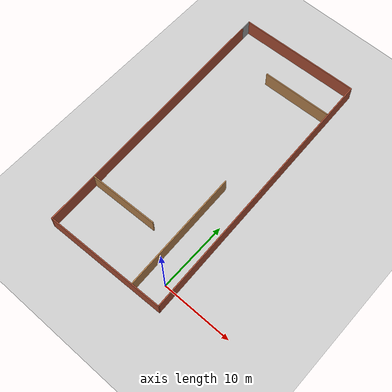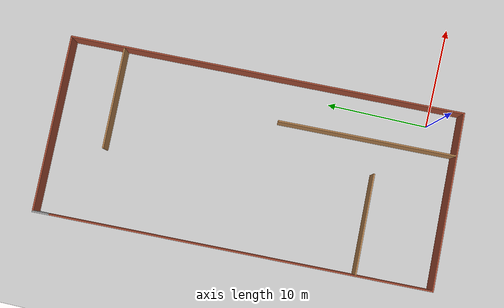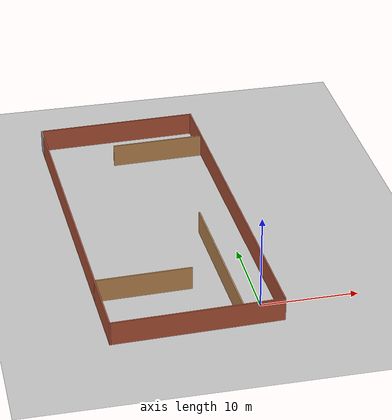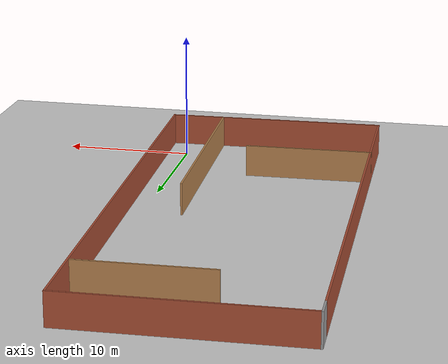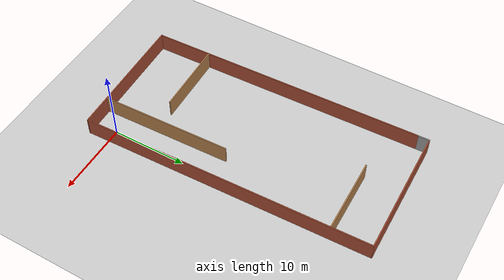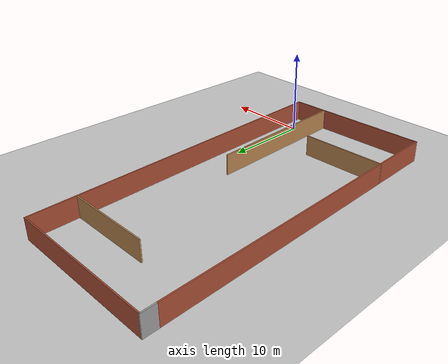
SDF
<sdf version="1.6">
 <world name="default">
  <light name="sun" type="directional">
   <pose>0 0 10 0 -0 0</pose>
   <diffuse>0.8 0.8 0.8 1</diffuse>
   <specular>0.2 0.2 0.2 1</specular>
   <attenuation>
    <range>1000</range>
    <constant>0.9</constant>
    <linear>0.01</linear>
    <quadratic>0.001</quadratic>
   </attenuation>
   <direction>-0.5 0.1 -0.9</direction>
  </light>
  <model name="ground_plane">
   <static>1</static>
   <link name="link">
    <collision name="collision">
     <geometry><plane><normal>0 0 1</normal><size>100 100</size></plane></geometry>
     <surface>
      <contact><collide_bitmask>65535</collide_bitmask></contact>
      <friction><ode><mu>100</mu><mu2>50</mu2></ode></friction>
     </surface>
    </collision>
    <visual name="visual">
     <cast_shadows>0</cast_shadows>
     <geometry><plane><normal>0 0 1</normal><size>100 100</size></plane></geometry>
     <material>
      <script><uri>file://media/materials/scripts/gazebo.material</uri><name>Gazebo/Grey</name></script>
     </material>
    </visual>
   </link>
  </model>
  <gravity>0 0 -9.8</gravity>
  <magnetic_field>6e-06 2.3e-05 -4.2e-05</magnetic_field>
  <atmosphere type="adiabatic"/>
  <physics name="default_physics" default="0" type="ode">
   <max_step_size>0.001</max_step_size>
   <real_time_factor>1</real_time_factor>
   <real_time_update_rate>1000</real_time_update_rate>
  </physics>
  <scene><ambient>0.4 0.4 0.4 1</ambient><background>0.7 0.7 0.7 1</background><shadows>1</shadows></scene>
  <audio><device>default</device></audio>
  <spherical_coordinates>
   <surface_model>EARTH_WGS84</surface_model>
   <latitude_deg>0</latitude_deg>
   <longitude_deg>0</longitude_deg>
   <elevation>0</elevation>
   <heading_deg>0</heading_deg>
  </spherical_coordinates>
  <model name="random2">
   <pose>-7.5251 16.3211 0 0 -0 1.6</pose>
   <link name="Wall_1">
    <collision name="Wall_1_Collision">
     <geometry><box><size>37.5 0.15 2.5</size></box></geometry>
     <pose>0 0 1.25 0 -0 0</pose>
    </collision>
    <visual name="Wall_1_Visual">
     <pose>0 0 1.25 0 -0 0</pose>
     <geometry><box><size>37.5 0.15 2.5</size></box></geometry>
     <material>
      <script><uri>file://media/materials/scripts/gazebo.material</uri><name>Gazebo/Bricks</name></script>
      <ambient>1 1 1 1</ambient>
     </material>
     <meta><layer>0</layer></meta>
    </visual>
    <pose>-0.75 8.66998 0 0 -0 3.14159</pose>
   </link>
   <link name="Wall_11">
    <collision name="Wall_11_Collision">
     <geometry><box><size>17.5 0.15 2.5</size></box></geometry>
     <pose>0 0 1.25 0 -0 0</pose>
    </collision>
    <visual name="Wall_11_Visual">
     <pose>0 0 1.25 0 -0 0</pose>
     <geometry><box><size>17.5 0.15 2.5</size></box></geometry>
     <material>
      <script><uri>file://media/materials/scripts/gazebo.material</uri><name>Gazebo/Wood</name></script>
      <ambient>1 1 1 1</ambient>
     </material>
     <meta><layer>0</layer></meta>
    </visual>
    <pose>-10.6528 -4.46804 0 0 -0 0</pose>
   </link>
   <link name="Wall_2">
    <collision name="Wall_2_Collision">
     <geometry><box><size>17.5 0.15 2.5</size></box></geometry>
     <pose>0 0 1.25 0 -0 0</pose>
    </collision>
    <visual name="Wall_2_Visual">
     <pose>0 0 1.25 0 -0 0</pose>
     <geometry><box><size>17.5 0.15 2.5</size></box></geometry>
     <material>
      <script><uri>file://media/materials/scripts/gazebo.material</uri><name>Gazebo/Bricks</name></script>
      <ambient>1 1 1 1</ambient>
     </material>
     <meta><layer>0</layer></meta>
    </visual>
    <pose>-19.425 -0.005021 0 0 -0 -1.5708</pose>
   </link>
   <link name="Wall_3">
    <collision name="Wall_3_Collision">
     <geometry><box><size>39 0.15 2.5</size></box></geometry>
     <pose>0 0 1.25 0 -0 0</pose>
    </collision>
    <visual name="Wall_3_Visual">
     <pose>0 0 1.25 0 -0 0</pose>
     <geometry><box><size>39 0.15 2.5</size></box></geometry>
     <material>
      <script><uri>file://media/materials/scripts/gazebo.material</uri><name>Gazebo/Bricks</name></script>
      <ambient>1 1 1 1</ambient>
     </material>
     <meta><layer>0</layer></meta>
    </visual>
    <pose>-0 -8.68002 0 0 -0 0</pose>
   </link>
   <link name="Wall_4">
    <collision name="Wall_4_Collision">
     <geometry><box><size>17.5 0.15 2.5</size></box></geometry>
     <pose>0 0 1.25 0 -0 0</pose>
    </collision>
    <visual name="Wall_4_Visual">
     <pose>0 0 1.25 0 -0 0</pose>
     <geometry><box><size>17.5 0.15 2.5</size></box></geometry>
     <material>
      <script><uri>file://media/materials/scripts/gazebo.material</uri><name>Gazebo/Bricks</name></script>
      <ambient>1 1 1 1</ambient>
     </material>
     <meta><layer>0</layer></meta>
    </visual>
    <pose>19.425 -0.005021 0 0 -0 1.5708</pose>
   </link>
   <link name="Wall_5">
    <collision name="Wall_5_Collision">
     <geometry><box><size>1.65 0.15 2.5</size></box></geometry>
     <pose>0 0 1.25 0 -0 0</pose>
    </collision>
    <visual name="Wall_5_Visual">
     <pose>0 0 1.25 0 -0 0</pose>
     <geometry><box><size>1.65 0.15 2.5</size></box></geometry>
     <material>
      <script><uri>file://media/materials/scripts/gazebo.material</uri><name>Gazebo/Grey</name></script>
      <ambient>1 1 1 1</ambient>
     </material>
     <meta><layer>0</layer></meta>
    </visual>
    <pose>18.675 8.66998 0 0 -0 -3.14159</pose>
   </link>
   <link name="Wall_7">
    <collision name="Wall_7_Collision">
     <geometry><box><size>10 0.15 2.5</size></box></geometry>
     <pose>0 0 1.25 0 -0 0</pose>
    </collision>
    <visual name="Wall_7_Visual">
     <pose>0 0 1.25 0 -0 0</pose>
     <geometry><box><size>10 0.15 2.5</size></box></geometry>
     <material>
      <script><uri>file://media/materials/scripts/gazebo.material</uri><name>Gazebo/Wood</name></script>
      <ambient>1 1 1 1</ambient>
     </material>
     <meta><layer>0</layer></meta>
    </visual>
    <pose>-11.9649 3.75502 0 0 -0 -1.5708</pose>
   </link>
   <link name="Wall_9">
    <collision name="Wall_9_Collision">
     <geometry><box><size>10 0.15 2.5</size></box></geometry>
     <pose>0 0 1.25 0 -0 0</pose>
    </collision>
    <visual name="Wall_9_Visual">
     <pose>0 0 1.25 0 -0 0</pose>
     <geometry><box><size>10 0.15 2.5</size></box></geometry>
     <material>
      <script><uri>file://media/materials/scripts/gazebo.material</uri><name>Gazebo/Wood</name></script>
      <ambient>1 1 1 1</ambient>
     </material>
     <meta><layer>0</layer></meta>
    </visual>
    <pose>14.1289 -3.56744 0 0 -0 -1.5708</pose>
   </link>
   <static>1</static>
  </model>
 </world>
</sdf>
